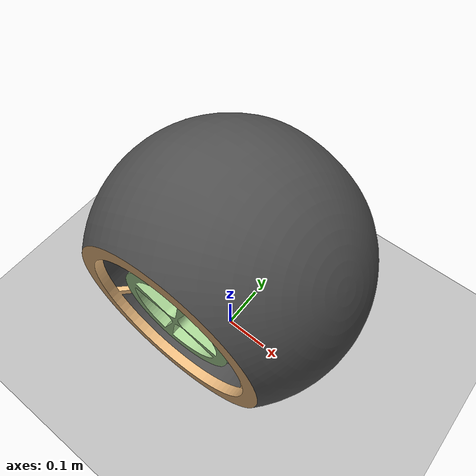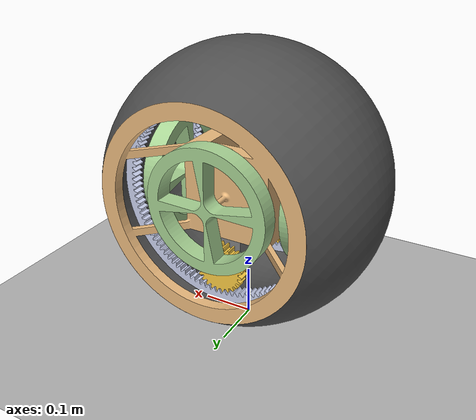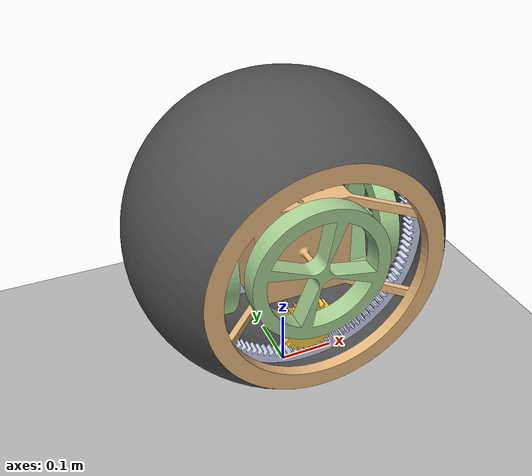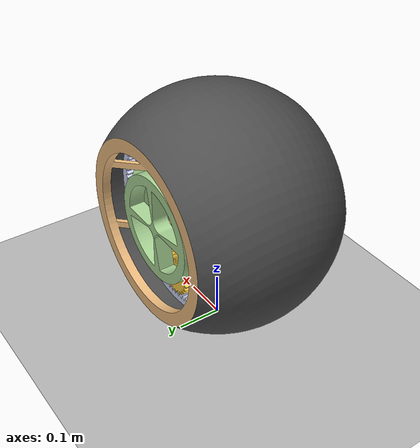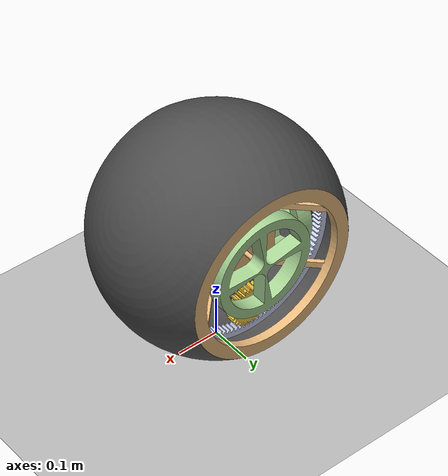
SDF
<?xml version="1.0"?>
<sdf version="1.7">
  <world name="default">
    <!-- simple light -->
    <light name="sun" type="directional">
      <pose>0 0 10 0 0 0</pose>
      <cast_shadows>true</cast_shadows>
      <diffuse>1 1 1 1</diffuse>
      <specular>0.1 0.1 0.1 1</specular>
      <attenuation>
        <range>100</range>
        <constant>0.9</constant>
        <linear>0.01</linear>
        <quadratic>0.001</quadratic>
      </attenuation>
      <direction>-0.5 0.5 -1</direction>
    </light>

    <!-- simple ground plane -->
    <model name="ground_plane">
      <static>true</static>
      <link name="link">
        <collision name="collision">
          <geometry>
            <plane>
              <normal>0 0 1</normal>
              <size>100 100</size>
            </plane>
          </geometry>
          <surface>
            <friction>
              <ode><mu>1.0</mu><mu2>1.0</mu2></ode>
            </friction>
          </surface>
        </collision>
        <visual name="visual">
          <geometry>
            <plane>
              <normal>0 0 1</normal>
              <size>100 100</size>
            </plane>
          </geometry>
          <material>
            <ambient>0.7 0.7 0.7 1</ambient>
            <diffuse>0.7 0.7 0.7 1</diffuse>
          </material>
        </visual>
      </link>
    </model>

    <!-- your model -->
    <include>
      <uri>model://spherical_robot</uri>
      <name>spherical_robot</name>
      <pose>0 0 0.3 0 0 0</pose>
    </include>
  </world>
</sdf>

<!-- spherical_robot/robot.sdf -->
<sdf version="1.7">
  <model name="spherical_robot">

    <link name="frame">
      <inertial>
        <pose>4.01233e-10 4.01233e-10 -0.0147997 0 0 0</pose>
        <mass>5.6812</mass>
        <inertia>
          <ixx>0.100807</ixx>
          <ixy>1.23838e-20</ixy>
          <ixz>-2.66501e-11</ixz>
          <iyy>0.0820328</iyy>
          <iyz>-4.08214e-11</iyz>
          <izz>0.0962124</izz>
        </inertia>
      </inertial>
      <pose>0 0 0 0 -0 0</pose>

      <visual name="motor_visual_mesh_1">
        <pose relative_to="frame">-3.66259e-17 0.045 -0.135 3.14159 -2.65113e-16 1.5708</pose>
        <geometry>
          <mesh>
            <uri>model://spherical_robot/assets/motor.stl</uri>
          </mesh>
        </geometry>
        <material>
          <ambient>0.498039 0.498039 0.498039 1</ambient>
          <diffuse>0.498039 0.498039 0.498039 1</diffuse>
          <specular>0.1 0.1 0.1 1</specular>
          <emissive>0 0 0 0</emissive>
        </material>
      </visual>
      <collision name="motor_collision_mesh_2">
        <pose relative_to="frame">-3.66259e-17 0.045 -0.135 3.14159 -2.65113e-16 1.5708</pose>
        <geometry>
          <mesh>
            <uri>model://spherical_robot/assets/motor.stl</uri>
          </mesh>
        </geometry>
      </collision>

      <visual name="frame_visual_mesh_1">
        <pose relative_to="frame">0 0 0 -3.14159 -3.19497e-16 3.66144e-55</pose>
        <geometry>
          <mesh>
            <uri>model://spherical_robot/assets/frame.stl</uri>
          </mesh>
        </geometry>
        <material>
          <ambient>0.917647 0.72549 0.490196 1</ambient>
          <diffuse>0.917647 0.72549 0.490196 1</diffuse>
          <specular>0.1 0.1 0.1 1</specular>
          <emissive>0 0 0 0</emissive>
        </material>
      </visual>
      <collision name="frame_collision_mesh_2">
        <pose relative_to="frame">0 0 0 -3.14159 -3.19497e-16 3.66144e-55</pose>
        <geometry>
          <mesh>
            <uri>model://spherical_robot/assets/frame.stl</uri>
          </mesh>
        </geometry>
      </collision>

      <visual name="motor_2_visual_mesh_1">
        <pose relative_to="frame">-2.07043e-17 -0.045 -0.135 3.14159 -5.10804e-17 -1.5708</pose>
        <geometry>
          <mesh>
            <uri>model://spherical_robot/assets/motor.stl</uri>
          </mesh>
        </geometry>
        <material>
          <ambient>0.498039 0.498039 0.498039 1</ambient>
          <diffuse>0.498039 0.498039 0.498039 1</diffuse>
          <specular>0.1 0.1 0.1 1</specular>
          <emissive>0 0 0 0</emissive>
        </material>
      </visual>
      <collision name="motor_2_collision_mesh_2">
        <pose relative_to="frame">-2.07043e-17 -0.045 -0.135 3.14159 -5.10804e-17 -1.5708</pose>
        <geometry>
          <mesh>
            <uri>model://spherical_robot/assets/motor.stl</uri>
          </mesh>
        </geometry>
      </collision>

      <sensor name="frame_imu" type="imu">
        <pose relative_to="frame">0 0 0.05 0 0 0</pose>
        <update_rate>500</update_rate>
        <always_on>true</always_on>
        <topic>spherical_robot/frame_imu</topic>
        <imu>
          <angular_velocity>
            <noise type="gaussian">
              <mean>0.0</mean>
              <stddev>0.001</stddev>
              <bias_mean>0.0</bias_mean>
              <bias_stddev>0.0001</bias_stddev>
              <dynamic_bias_stddev>0.0001</dynamic_bias_stddev>
              <dynamic_bias_correlation_time>10.0</dynamic_bias_correlation_time>
            </noise>
          </angular_velocity>
          <linear_acceleration>
            <noise type="gaussian">
              <mean>0.0</mean>
              <stddev>0.05</stddev>
              <bias_mean>0.0</bias_mean>
              <bias_stddev>0.01</bias_stddev>
              <dynamic_bias_stddev>0.01</dynamic_bias_stddev>
              <dynamic_bias_correlation_time>10.0</dynamic_bias_correlation_time>
            </noise>
          </linear_acceleration>
        </imu>
      </sensor>
    </link>

    <link name="inertial_wheel">
      <inertial>
        <pose>1.04194e-17 2.84745e-17 0.0154962 0 0 0</pose>
        <mass>5.42378</mass>
        <inertia>
          <ixx>0.0270726</ixx>
          <ixy>0</ixy>
          <ixz>3.5079e-33</ixz>
          <iyy>0.0270726</iyy>
          <iyz>0</iyz>
          <izz>0.0530374</izz>
        </inertia>
      </inertial>
      <pose relative_to="rw_x">0 0 0 0 -0 0</pose>

      <visual name="inertial_wheel_visual_mesh_1">
        <pose relative_to="inertial_wheel">0 -3.06162e-19 0.0155 -1.5708 -1.28668e-31 0</pose>
        <geometry>
          <mesh>
            <uri>model://spherical_robot/assets/inertial_wheel.stl</uri>
          </mesh>
        </geometry>
        <material>
          <ambient>0.654902 0.823529 0.576471 1</ambient>
          <diffuse>0.654902 0.823529 0.576471 1</diffuse>
          <specular>0.1 0.1 0.1 1</specular>
          <emissive>0 0 0 0</emissive>
        </material>
      </visual>
      <collision name="inertial_wheel_collision_mesh_2">
        <pose relative_to="inertial_wheel">0 -3.06162e-19 0.0155 -1.5708 -1.28668e-31 0</pose>
        <geometry>
          <mesh>
            <uri>model://spherical_robot/assets/inertial_wheel.stl</uri>
          </mesh>
        </geometry>
      </collision>
    </link>

    <joint name="rw_x" type="revolute">
      <pose relative_to="frame">-0.155 6.93889e-18 -6.24815e-17 -1.5708 7.45191e-07 -1.5708</pose>
      <parent>frame</parent>
      <child>inertial_wheel</child>
      <axis>
        <xyz>0 0 1</xyz>
        <limit>
          <effort>50</effort>
          <velocity>5000</velocity>
        </limit>
        <dynamics>
          <friction>0.01</friction>
          <damping>0.005</damping>
        </dynamics>
      </axis>
    </joint>

    <link name="inertial_wheel_2">
      <inertial>
        <pose>1.04194e-17 2.84745e-17 0.0154962 0 0 0</pose>
        <mass>5.42378</mass>
        <inertia>
          <ixx>0.0270726</ixx>
          <ixy>-7.51415e-19</ixy>
          <ixz>-3.26868e-34</ixz>
          <iyy>0.0270726</iyy>
          <iyz>8.1717e-35</iyz>
          <izz>0.0530374</izz>
        </inertia>
      </inertial>
      <pose relative_to="rw_y">0 0 0 0 -0 0</pose>

      <visual name="inertial_wheel_2_visual_mesh_1">
        <pose relative_to="inertial_wheel_2">7.70372e-34 -3.06162e-19 0.0155 -1.5708 -0 -2.77556e-17</pose>
        <geometry>
          <mesh>
            <uri>model://spherical_robot/assets/inertial_wheel.stl</uri>
          </mesh>
        </geometry>
        <material>
          <ambient>0.654902 0.823529 0.576471 1</ambient>
          <diffuse>0.654902 0.823529 0.576471 1</diffuse>
          <specular>0.1 0.1 0.1 1</specular>
          <emissive>0 0 0 0</emissive>
        </material>
      </visual>
      <collision name="inertial_wheel_2_collision_mesh_2">
        <pose relative_to="inertial_wheel_2">7.70372e-34 -3.06162e-19 0.0155 -1.5708 -0 -2.77556e-17</pose>
        <geometry>
          <mesh>
            <uri>model://spherical_robot/assets/inertial_wheel.stl</uri>
          </mesh>
        </geometry>
      </collision>
    </link>

    <joint name="rw_y" type="revolute">
      <pose relative_to="frame">-1.64113e-22 0.155 1.90737e-18 1.5708 -1.38032 -1.90153e-16</pose>
      <parent>frame</parent>
      <child>inertial_wheel_2</child>
      <axis>
        <xyz>0 0 1</xyz>
        <limit>
          <effort>50</effort>
          <velocity>5000</velocity>
        </limit>
        <dynamics>
          <friction>0.01</friction>
          <damping>0.005</damping>
        </dynamics>
      </axis>
    </joint>

    <link name="inertial_wheel_3">
      <inertial>
        <pose>1.02035e-17 2.68386e-17 0.0154962 0 0 0</pose>
        <mass>5.42378</mass>
        <inertia>
          <ixx>0.0270726</ixx>
          <ixy>1.98531e-18</ixy>
          <ixz>-1.68233e-18</ixz>
          <iyy>0.0270726</iyy>
          <iyz>5.90871e-18</iyz>
          <izz>0.0530374</izz>
        </inertia>
      </inertial>
      <pose relative_to="rw_z">0 0 0 0 -0 0</pose>

      <visual name="inertial_wheel_3_visual_mesh_1">
        <pose relative_to="inertial_wheel_3">-2.15951e-19 -1.94237e-18 0.0155 -1.5708 3.48472e-17 -7.45191e-07</pose>
        <geometry>
          <mesh>
            <uri>model://spherical_robot/assets/inertial_wheel.stl</uri>
          </mesh>
        </geometry>
        <material>
          <ambient>0.654902 0.823529 0.576471 1</ambient>
          <diffuse>0.654902 0.823529 0.576471 1</diffuse>
          <specular>0.1 0.1 0.1 1</specular>
          <emissive>0 0 0 0</emissive>
        </material>
      </visual>
      <collision name="inertial_wheel_3_collision_mesh_2">
        <pose relative_to="inertial_wheel_3">-2.15951e-19 -1.94237e-18 0.0155 -1.5708 3.48472e-17 -7.45191e-07</pose>
        <geometry>
          <mesh>
            <uri>model://spherical_robot/assets/inertial_wheel.stl</uri>
          </mesh>
        </geometry>
      </collision>
    </link>

    <joint name="rw_z" type="revolute">
      <pose relative_to="frame">0.155 5.67522e-56 6.18692e-17 1.5708 3.66644e-17 -1.5708</pose>
      <parent>frame</parent>
      <child>inertial_wheel_3</child>
      <axis>
        <xyz>0 0 1</xyz>
        <limit>
          <effort>50</effort>
          <velocity>5000</velocity>
        </limit>
        <dynamics>
          <friction>0.01</friction>
          <damping>0.005</damping>
        </dynamics>
      </axis>
    </joint>

    <link name="inertial_wheel_4">
      <inertial>
        <pose>1.04194e-17 2.84745e-17 0.0154962 0 0 0</pose>
        <mass>5.42378</mass>
        <inertia>
          <ixx>0.0270726</ixx>
          <ixy>4.81482e-34</ixy>
          <ixz>-1.66848e-34</ixz>
          <iyy>0.0270726</iyy>
          <iyz>4.00051e-35</iyz>
          <izz>0.0530374</izz>
        </inertia>
      </inertial>
      <pose relative_to="rw_w">0 0 0 0 -0 0</pose>

      <visual name="inertial_wheel_4_visual_mesh_1">
        <pose relative_to="inertial_wheel_4">0 -3.06162e-19 0.0155 -1.5708 6.16298e-33 2.77556e-17</pose>
        <geometry>
          <mesh>
            <uri>model://spherical_robot/assets/inertial_wheel.stl</uri>
          </mesh>
        </geometry>
        <material>
          <ambient>0.654902 0.823529 0.576471 1</ambient>
          <diffuse>0.654902 0.823529 0.576471 1</diffuse>
          <specular>0.1 0.1 0.1 1</specular>
          <emissive>0 0 0 0</emissive>
        </material>
      </visual>
      <collision name="inertial_wheel_4_collision_mesh_2">
        <pose relative_to="inertial_wheel_4">0 -3.06162e-19 0.0155 -1.5708 6.16298e-33 2.77556e-17</pose>
        <geometry>
          <mesh>
            <uri>model://spherical_robot/assets/inertial_wheel.stl</uri>
          </mesh>
        </geometry>
      </collision>
    </link>

    <joint name="rw_w" type="revolute">
      <pose relative_to="frame">1.64113e-22 -0.155 9.49754e-19 -1.5708 -1.38032 -1.90143e-16</pose>
      <parent>frame</parent>
      <child>inertial_wheel_4</child>
      <axis>
        <xyz>0 0 1</xyz>
        <limit>
          <effort>50</effort>
          <velocity>5000</velocity>
        </limit>
        <dynamics>
          <friction>0.01</friction>
          <damping>0.005</damping>
        </dynamics>
      </axis>
    </joint>

    <link name="outer">
      <inertial>
        <pose>-1.21378e-06 1.77607e-06 0.18028 0 0 0</pose>
        <mass>21.3538</mass>
        <inertia>
          <ixx>0.695158</ixx>
          <ixy>2.81968e-05</ixy>
          <ixz>-6.47805e-16</ixz>
          <iyy>0.695136</iyy>
          <iyz>6.36409e-17</iyz>
          <izz>1.03355</izz>
        </inertia>
      </inertial>
      <pose relative_to="outer_2">0 0 0 0 -0 0</pose>

      <visual name="internal_gear_visual_mesh_1">
        <pose relative_to="outer">0.00392548 -0.00574396 0.264747 -2.1703 1.5708 0</pose>
        <geometry>
          <mesh>
            <uri>model://spherical_robot/assets/internal_gear.stl</uri>
          </mesh>
        </geometry>
        <material>
          <ambient>0.796078 0.823529 0.937255 1</ambient>
          <diffuse>0.796078 0.823529 0.937255 1</diffuse>
          <specular>0.1 0.1 0.1 1</specular>
          <emissive>0 0 0 0</emissive>
        </material>
      </visual>
      <collision name="internal_gear_collision_mesh_2">
        <pose relative_to="outer">0.00392548 -0.00574396 0.264747 -2.1703 1.5708 0</pose>
        <geometry>
          <mesh>
            <uri>model://spherical_robot/assets/internal_gear.stl</uri>
          </mesh>
        </geometry>
      </collision>

      <visual name="internal_gear_2_visual_mesh_1">
        <pose relative_to="outer">0.00574396 0.00392548 0.0596262 2.54209 1.5708 0</pose>
        <geometry>
          <mesh>
            <uri>model://spherical_robot/assets/internal_gear.stl</uri>
          </mesh>
        </geometry>
        <material>
          <ambient>0.796078 0.823529 0.937255 1</ambient>
          <diffuse>0.796078 0.823529 0.937255 1</diffuse>
          <specular>0.1 0.1 0.1 1</specular>
          <emissive>0 0 0 0</emissive>
        </material>
      </visual>
      <collision name="internal_gear_2_collision_mesh_2">
        <pose relative_to="outer">0.00574396 0.00392548 0.0596262 2.54209 1.5708 0</pose>
        <geometry>
          <mesh>
            <uri>model://spherical_robot/assets/internal_gear.stl</uri>
          </mesh>
        </geometry>
      </collision>

      <visual name="outer_visual_mesh_1">
        <pose relative_to="outer">-5.10971e-17 1.46138e-16 0.18028 -1.5708 -6.72614e-16 -0.971291</pose>
        <geometry>
          <mesh>
            <uri>model://spherical_robot/assets/outer.stl</uri>
          </mesh>
        </geometry>
        <material>
          <ambient>0.301961 0.301961 0.301961 1</ambient>
          <diffuse>0.301961 0.301961 0.301961 1</diffuse>
          <specular>0.1 0.1 0.1 1</specular>
          <emissive>0 0 0 0</emissive>
        </material>
      </visual>
      <collision name="outer_collision_mesh_2">
        <pose relative_to="outer">-5.10971e-17 1.46138e-16 0.18028 -1.5708 -6.72614e-16 -0.971291</pose>
        <geometry>
          <mesh>
            <uri>model://spherical_robot/assets/outer.stl</uri>
          </mesh>
        </geometry>
      </collision>
    </link>

    <joint name="outer_2" type="revolute">
      <pose relative_to="frame">9.94916e-17 0.180277 -1.04195e-17 1.5708 -3.19497e-16 3.66144e-55</pose>
      <parent>frame</parent>
      <child>outer</child>
      <axis>
        <xyz>0 0 1</xyz>
        <limit>
          <effort>30</effort>
          <velocity>250</velocity>
        </limit>
        <dynamics>
          <friction>0.005</friction>
          <damping>0.01</damping>
        </dynamics>
      </axis>
    </joint>

    <link name="spur_gear">
      <inertial>
        <pose>2.73219e-17 1.47451e-17 0.0109091 0 0 0</pose>
        <mass>1.06896</mass>
        <inertia>
          <ixx>0.000598717</ixx>
          <ixy>-2.60209e-18</ixy>
          <ixz>3.53171e-20</ixz>
          <iyy>0.000598717</iyy>
          <iyz>3.70601e-19</iyz>
          <izz>0.00111262</izz>
        </inertia>
      </inertial>
      <pose relative_to="motor_joint_1">0 0 0 0 -0 0</pose>

      <visual name="spur_gear_visual_mesh_1">
        <pose relative_to="spur_gear">-0.00373433 -0.00411664 0.00854085 -0.827225 1.5708 0</pose>
        <geometry>
          <mesh>
            <uri>model://spherical_robot/assets/spur_gear.stl</uri>
          </mesh>
        </geometry>
        <material>
          <ambient>0.980392 0.796078 0.262745 1</ambient>
          <diffuse>0.980392 0.796078 0.262745 1</diffuse>
          <specular>0.1 0.1 0.1 1</specular>
          <emissive>0 0 0 0</emissive>
        </material>
      </visual>
      <collision name="spur_gear_collision_mesh_2">
        <pose relative_to="spur_gear">-0.00373433 -0.00411664 0.00854085 -0.827225 1.5708 0</pose>
        <geometry>
          <mesh>
            <uri>model://spherical_robot/assets/spur_gear.stl</uri>
          </mesh>
        </geometry>
      </collision>
    </link>

    <joint name="motor_joint_1" type="revolute">
      <pose relative_to="frame">-3.62185e-17 0.113466 -0.135 1.5708 -4.51182e-16 -8.11203e-18</pose>
      <parent>frame</parent>
      <child>spur_gear</child>
      <axis>
        <xyz>0 0 1</xyz>
        <limit>
          <effort>15</effort>
          <velocity>200</velocity>
        </limit>
        <dynamics>
          <friction>0.05</friction>
          <damping>0.1</damping>
        </dynamics>
      </axis>
    </joint>

    <link name="spur_gear_2">
      <inertial>
        <pose>-2.44759e-17 -3.81639e-17 -0.0109091 0 0 0</pose>
        <mass>1.06896</mass>
        <inertia>
          <ixx>0.000598717</ixx>
          <ixy>-6.6471e-20</ixy>
          <ixz>-3.42854e-35</ixz>
          <iyy>0.000598717</iyy>
          <iyz>5.5902e-35</iyz>
          <izz>0.00111262</izz>
        </inertia>
      </inertial>
      <pose relative_to="motor_joint_2">0 0 0 0 -0 0</pose>

      <visual name="spur_gear_2_visual_mesh_1">
        <pose relative_to="spur_gear_2">-3.79643e-05 0.00555792 -0.0132773 1.5708 1.5708 0</pose>
        <geometry>
          <mesh>
            <uri>model://spherical_robot/assets/spur_gear.stl</uri>
          </mesh>
        </geometry>
        <material>
          <ambient>0.980392 0.796078 0.262745 1</ambient>
          <diffuse>0.980392 0.796078 0.262745 1</diffuse>
          <specular>0.1 0.1 0.1 1</specular>
          <emissive>0 0 0 0</emissive>
        </material>
      </visual>
      <collision name="spur_gear_2_collision_mesh_2">
        <pose relative_to="spur_gear_2">-3.79643e-05 0.00555792 -0.0132773 1.5708 1.5708 0</pose>
        <geometry>
          <mesh>
            <uri>model://spherical_robot/assets/spur_gear.stl</uri>
          </mesh>
        </geometry>
      </collision>
    </link>

    <joint name="motor_joint_2" type="revolute">
      <pose relative_to="frame">-3.03577e-17 -0.113466 -0.135 -1.5708 -0.743571 -3.14159</pose>
      <parent>frame</parent>
      <child>spur_gear_2</child>
      <axis>
        <xyz>0 0 1</xyz>
        <limit>
          <effort>15</effort>
          <velocity>200</velocity>
        </limit>
        <dynamics>
          <friction>0.05</friction>
          <damping>0.1</damping>
        </dynamics>
      </axis>
    </joint>
    <ros2_control name="GazeboSimSystem" type="system">
      <hardware>
        <plugin>gz_ros2_control/GazeboSimSystem</plugin>
      </hardware>
      <joint name="rw_x">
        <command_interface name="effort">
          <param name="min">-50</param>
          <param name="max">50</param>
        </command_interface>
        <state_interface name="position" />
        <state_interface name="velocity" />
        </joint>
      <joint name="rw_y">
        <command_interface name="effort">
          <param name="min">-50</param>
          <param name="max">50</param>
        </command_interface>
        <state_interface name="position" />
        <state_interface name="velocity" />
        </joint>
      <joint name="rw_z">
        <command_interface name="effort">
          <param name="min">-50</param>
          <param name="max">50</param>
        </command_interface>
        <state_interface name="position" />
        <state_interface name="velocity" />
        </joint>
      <joint name="rw_w">
        <command_interface name="effort">
          <param name="min">-50</param>
          <param name="max">50</param>
        </command_interface>
        <state_interface name="position" />
        <state_interface name="velocity" />
        </joint>
      <joint name="motor_joint_1">
        <command_interface name="velocity">
          <param name="min">-200</param>
          <param name="max">200</param>
        </command_interface>
        <state_interface name="position" />
        </joint>
      <joint name="motor_joint_2">
        <command_interface name="velocity">
          <param name="min">-200</param>
          <param name="max">200</param>
        </command_interface>
        <state_interface name="position" />
        </joint>
      <joint name="outer_2">
        <command_interface name="velocity">
          <param name="min">-250</param>
          <param name="max">250</param>
        </command_interface>
        <state_interface name="position" />
        </joint>
    </ros2_control>
    <plugin filename="libgz_ros2_control-system.so" name="gz_ros2_control::GazeboSimROS2ControlPlugin">
      <parameters>/home/gontary/ros_ws/src/spherical_robot_control/config/spherical_robot_control.yaml</parameters>
      <ros>
        <namespace>/spherical_robot</namespace>
      </ros>
    </plugin>
  </model>
</sdf>
